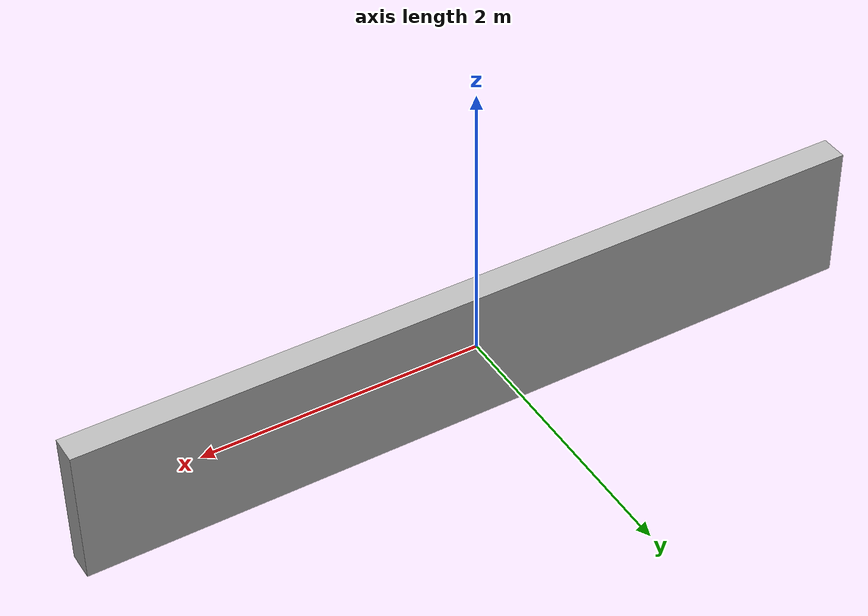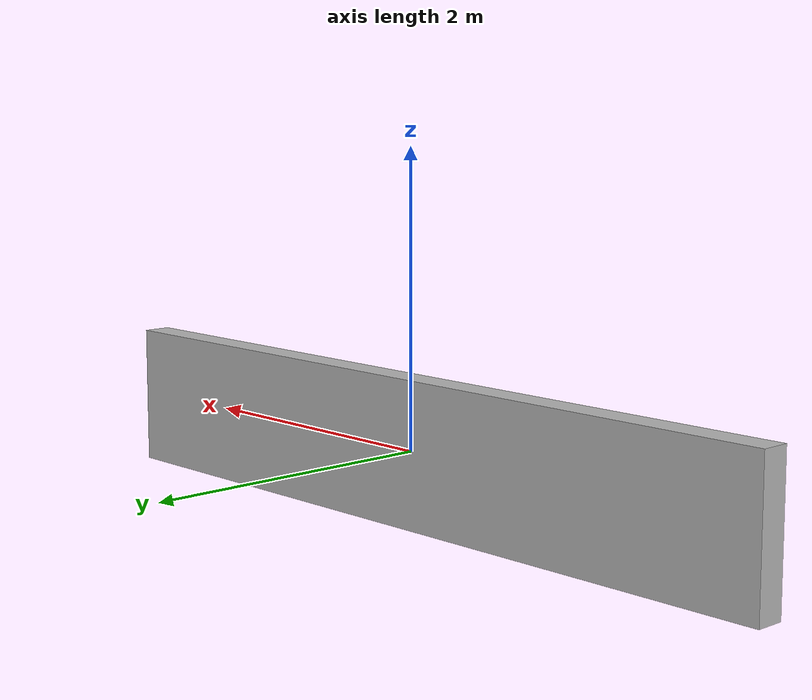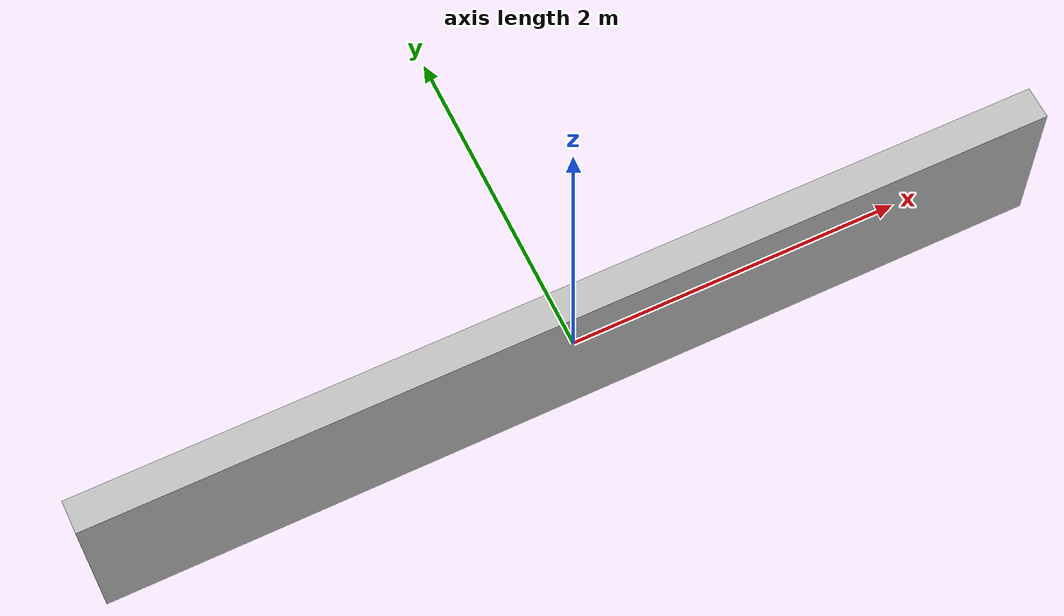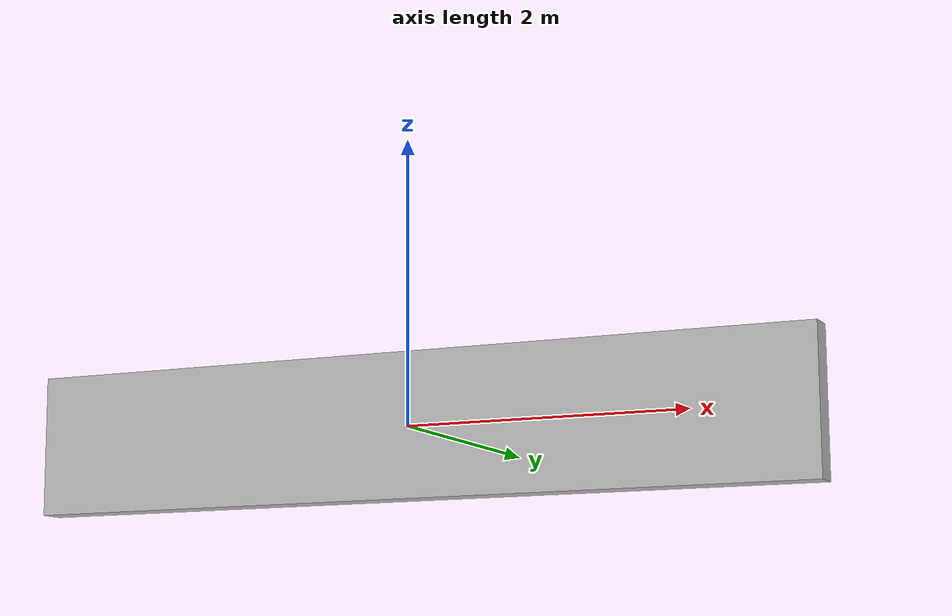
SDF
<?xml version='1.0'?>
<sdf version='1.6'>
  <model name='room_0_wall_bottom'>
    <static>true</static>
    <link name='link'>
      <collision name='collision'>
        <pose>0 0 0 0 0 0</pose>
        <geometry>
          <box>
            <size>5.73 0.2 1.0</size>
          </box>
        </geometry>
      </collision>
      <visual name='visual'>
        <pose>0 0 0 0 0 0</pose>
        <geometry>
          <box>
            <size>5.73 0.2 1.0</size>
          </box>
        </geometry>
      </visual>
    </link>
  </model>
</sdf>
